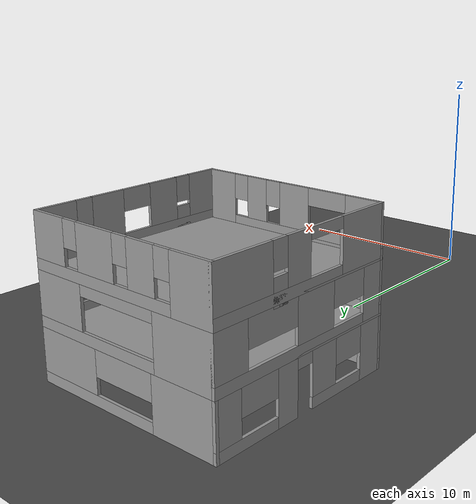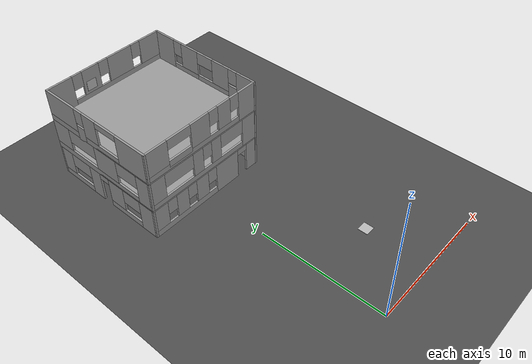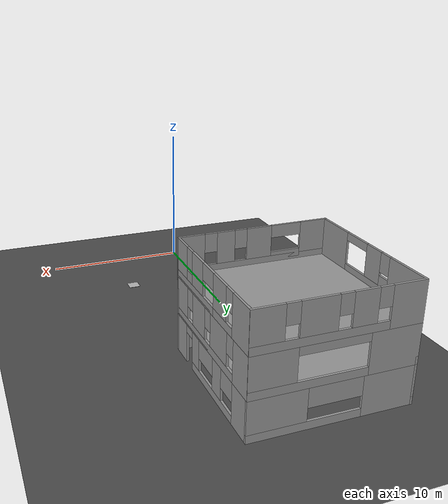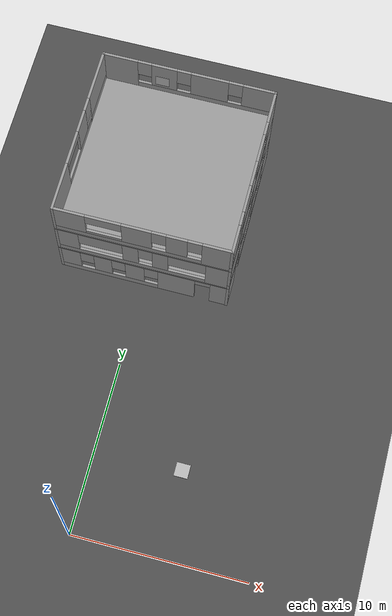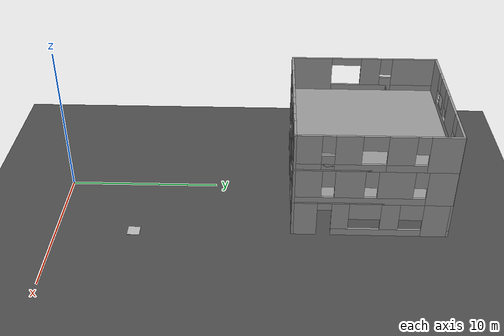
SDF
<?xml version="1.0" ?>
<sdf version='1.4'>
  <world name='default'>

    <physics type='ode'>
      <max_step_size>0.001</max_step_size>
      <real_time_factor>1</real_time_factor>
      <real_time_update_rate>1000</real_time_update_rate>
      <gravity>0 0 -9.8</gravity>
    </physics>

    <spherical_coordinates>
      <surface_model>EARTH_WGS84</surface_model>
      <latitude_deg>0</latitude_deg>
      <longitude_deg>0</longitude_deg>
      <elevation>0</elevation>
      <heading_deg>0</heading_deg>
    </spherical_coordinates>

    <!-- A global light source -->
   <scene>
      <sky>
        <clouds>
          <speed>12</speed>
        </clouds>
      </sky>
   </scene>

   <include>
     <uri>model://sun</uri>
   </include>

  <model name="ground_plane">
    <static>true</static>
    <link name="link">
      <collision name="collision">
        <geometry>
          <plane>
            <normal>0 0 1</normal>
            <size>100 100</size>
          </plane>
        </geometry>
        <surface>
          <friction>
            <ode>
              <mu>100</mu>
              <mu2>50</mu2>
            </ode>
          </friction>
        </surface>
      </collision>
      <visual name="visual">
        <cast_shadows>false</cast_shadows>
        <geometry>
          <plane>
            <normal>0 0 1</normal>
            <size>100 100</size>
          </plane>
        </geometry>
        <material>
          <script>
            <uri>model://asphalt_plane/materials/scripts</uri>
            <uri>model://asphalt_plane/materials/textures</uri>
            <name>vrc/asphalt</name>
          </script>
        </material>
      </visual>
    </link>
  </model>

  <!-- tower -->
  <model name="tower">
    <pose>0 20 0.02 0 0 0</pose>
    <include>
      <uri>model://Tower_3Story</uri>
    </include>
  </model>

   <!-- fire location 1 -->
    <model name="fire1" >
      <static>true</static>
      <pose>5 5 0 0 0 0</pose>
      <include>
        <uri>model://real_fire</uri>
      </include>
    </model>

    <model name="fire2" >
      <static>true</static>
      <pose>-1.48 24.95 6.16 1.5708 0 0</pose>
      <include>
        <uri>model://real_fire</uri>
      </include>
    </model>

    <model name="fire3" >
      <static>true</static>
      <pose>-4.8 19.62 4.13 0 1.5708 0</pose>
      <include>
        <uri>model://real_fire</uri>
      </include>
    </model>

    <model name="fire4" >
      <static>true</static>
      <pose>4.85 21.35 1 0 1.5708 0</pose>
      <include>
        <uri>model://real_fire</uri>
      </include>
    </model>

  </world>
</sdf>

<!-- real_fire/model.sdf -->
<sdf version='1.4'>
  <model name="real_fire">
    <link name="link" >
      <pose>0 0 0.01 0 0 0</pose>
      <inertial>
        <mass>0.5</mass>
        <inertia>
          <ixx>0.01</ixx> <ixy>0.0</ixy> <ixz>0.0</ixz>
          <iyy>0.01</iyy> <iyz>0.0</iyz> <izz>0.02</izz>
        </inertia>
      </inertial>
      <collision name="collision">
        <geometry>
          <box>
            <size>.8 .8 .02</size>
          </box>
        </geometry>
      </collision>
      <visual name="visual">
        <geometry>
          <box>
            <size>.8 .8 .02</size>
          </box>
        </geometry>
        <material>
          <script>
            <uri>model://real_fire/materials/scripts</uri>
            <uri>model://real_fire/materials/textures</uri>
            <name>fire</name>
          </script>
        </material>
      </visual>
    </link>
  </model>
</sdf>
